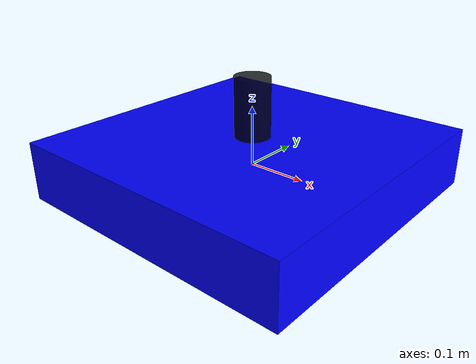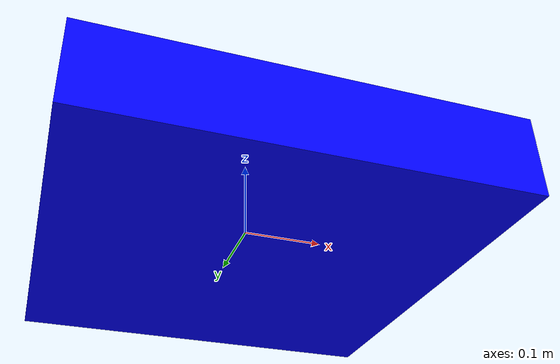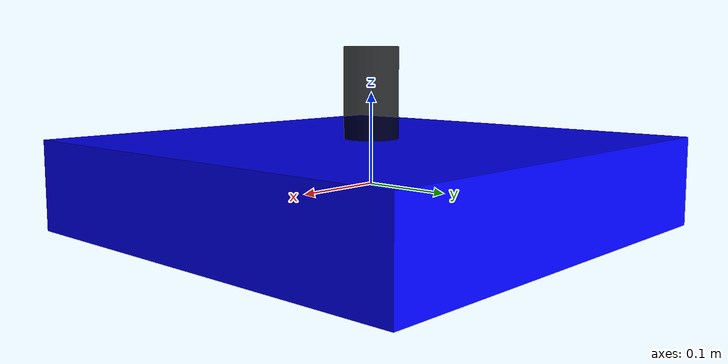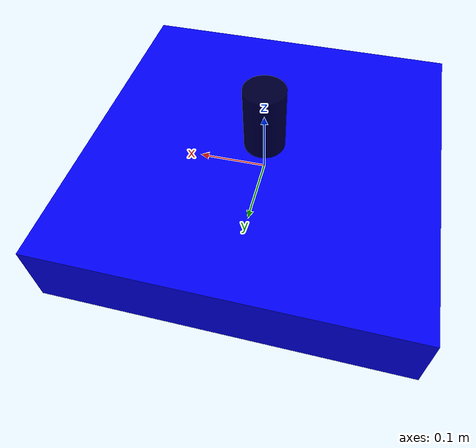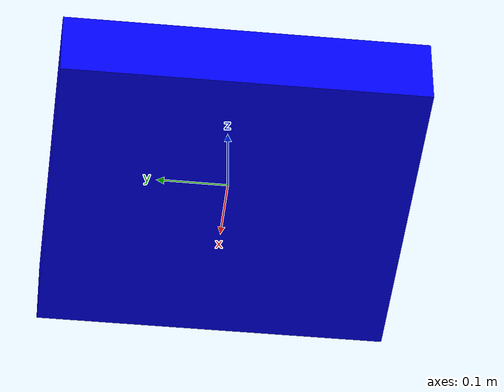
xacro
<?xml version="1.0"?>
<robot name="mybot" xmlns:xacro="http://www.ros.org/wiki/xacro">

  <material name="black"><color rgba="0.0 0.0 0.0 0.8"/></material>

  <xacro:property name="lidar_radius" value="0.03"/>
  <xacro:property name="lidar_length" value="0.1"/>

  <link name="base_link">
    <visual>
      <geometry>
        <box size="0.5 0.5 0.1"/>
      </geometry>
      <material name="blue"><color rgba="0 0 1 1"/></material>
    </visual>
    <collision>
      <geometry><box size="0.5 0.5 0.1"/></geometry>
    </collision>
    <inertial>
      <mass value="10"/>
      <inertia ixx="1" ixy="0" ixz="0" iyy="1" iyz="0" izz="1"/>
    </inertial>
  </link>

  <link name="lidar_link">
    <visual>
      <geometry>
        <cylinder radius="${lidar_radius}" length="${lidar_length}"/>
      </geometry>
      <material name="black"/>
    </visual>
    <collision>
      <geometry>
        <cylinder radius="${lidar_radius}" length="${lidar_length}"/>
      </geometry>
    </collision>
    <inertial>
      <mass value="0.1"/>
      <inertia ixx="${(1/12) * 0.1 * (3*lidar_radius*lidar_radius + lidar_length*lidar_length)}" ixy="0" ixz="0"
              iyy="${(1/12) * 0.1 * (3*lidar_radius*lidar_radius + lidar_length*lidar_length)}" iyz="0"
              izz="${(1/2) * 0.1 * (lidar_radius*lidar_radius)}"/>
    </inertial>
  </link>
  <joint name="lidar_joint" type="fixed">
    <parent link="base_link"/>
    <child link="lidar_link"/>
    <origin xyz="0 0 0.1" rpy="0 0 0"/>
  </joint>

</robot>
